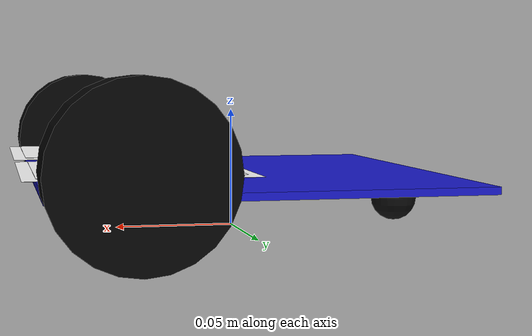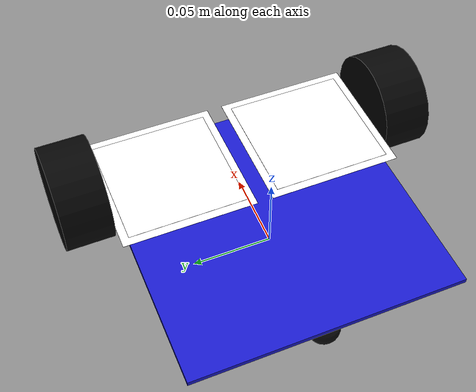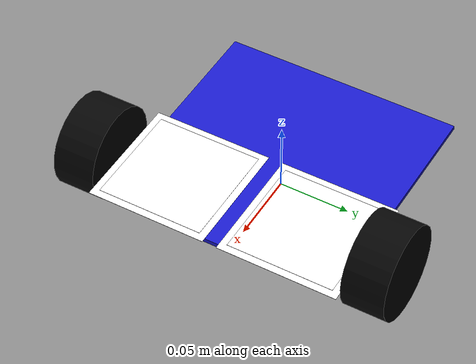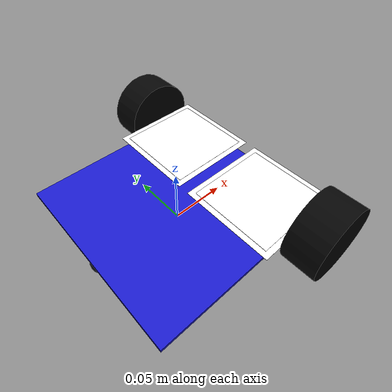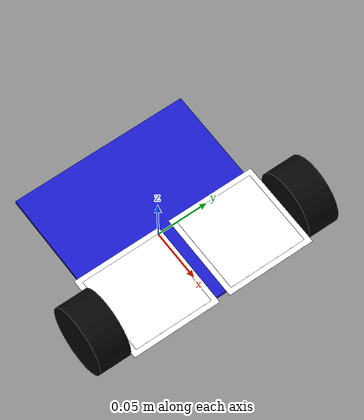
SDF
<?xml version="1.0" ?>
<sdf version="1.9">
  <model name="lane_bot">
    <!-- 모델 자체에는 z offset을 주지 않음 -->
    <pose>0 0 0 0 0 0</pose>
    <static>false</static>

    <!-- Base body -->
    <link name="base_link">
      <!-- 차체 바닥이 지면에서 2 cm 위.
           차체 두께 0.003 m이므로 center z = 0.020 + 0.0015 = 0.0215 -->
      <pose>0 0 0.0215 0 0 0</pose>

      <inertial>
        <pose>0 0 -0.005 0 0 0</pose>
        <mass>1.0</mass>
        <inertia>
          <ixx>0.01</ixx>
          <iyy>0.01</iyy>
          <izz>0.02</izz>
          <ixy>0</ixy>
          <ixz>0</ixz>
          <iyz>0</iyz>
        </inertia>
      </inertial>

      <collision name="base_collision">
        <geometry>
          <box>
            <size>0.17 0.17 0.003</size>
          </box>
        </geometry>
      </collision>

      <visual name="base_visual">
        <geometry>
          <box>
            <size>0.17 0.17 0.003</size>
          </box>
        </geometry>
        <material>
          <ambient>0.1 0.1 0.8 1</ambient>
          <diffuse>0.1 0.1 0.8 1</diffuse>
        </material>
      </visual>

      <visual name="aruco_10_white_plate">
        <pose>0.050 0.0475 0.0075 0 0 0</pose>
        <geometry>
          <plane>
            <normal>0 0 1</normal>
            <size>0.085 0.085</size>
          </plane>
        </geometry>
        <material>
          <ambient>1 1 1 1</ambient>
          <diffuse>1 1 1 1</diffuse>
        </material>
      </visual>

      <!-- ArUco marker 10 -->
      <!-- marker center는 기존이 맞다고 했으므로 x=0.055 유지 -->
      <visual name="aruco_10_visual">
        <pose>0.050 0.0475 0.008 0 0 0</pose>
        <geometry>
          <plane>
            <normal>0 0 1</normal>
            <size>0.075 0.075</size>
          </plane>
        </geometry>
        <material>
          <ambient>1 1 1 1</ambient>
          <diffuse>1 1 1 1</diffuse>
          <pbr>
            <metal>
              <albedo_map>materials/textures/aruco_10.png</albedo_map>
            </metal>
          </pbr>
        </material>
      </visual>

      <visual name="aruco_15_white_plate">
        <pose>0.050 -0.0475 0.0075 0 0 0</pose>
        <geometry>
          <plane>
            <normal>0 0 1</normal>
            <size>0.085 0.085</size>
          </plane>
        </geometry>
        <material>
          <ambient>1 1 1 1</ambient>
          <diffuse>1 1 1 1</diffuse>
        </material>
      </visual>

      <!-- ArUco marker 15 -->
      <visual name="aruco_15_visual">
        <pose>0.050 -0.0475 0.008 0 0 0</pose>
        <geometry>
          <plane>
            <normal>0 0 1</normal>
            <size>0.075 0.075</size>
          </plane>
        </geometry>
        <material>
          <ambient>1 1 1 1</ambient>
          <diffuse>1 1 1 1</diffuse>
          <pbr>
            <metal>
              <albedo_map>materials/textures/aruco_15.png</albedo_map>
            </metal>
          </pbr>
        </material>
      </visual>
    </link>

    <!-- Left front wheel -->
    <!-- 바퀴 지름 6.5 cm → radius 0.0325 m.
         바퀴 축 x는 marker 중심선과 일치해야 하므로 x=0.055 -->
    <link name="left_wheel">
      <pose>0.055 0.105 0.0325 1.5708 0 0</pose>

      <inertial>
        <mass>0.1</mass>
        <inertia>
          <ixx>0.0001</ixx>
          <iyy>0.0001</iyy>
          <izz>0.0001</izz>
          <ixy>0</ixy>
          <ixz>0</ixz>
          <iyz>0</iyz>
        </inertia>
      </inertial>

      <collision name="left_wheel_collision">
        <geometry>
          <cylinder>
            <radius>0.0325</radius>
            <length>0.03</length>
          </cylinder>
        </geometry>
        <surface>
          <friction>
            <ode>
              <mu>1.2</mu>
              <mu2>1.2</mu2>
            </ode>
          </friction>
          <contact>
            <ode>
              <kp>100000</kp>
              <kd>10</kd>
              <max_vel>0.1</max_vel>
              <min_depth>0.001</min_depth>
            </ode>
          </contact>
        </surface>
      </collision>

      <visual name="left_wheel_visual">
        <geometry>
          <cylinder>
            <radius>0.0325</radius>
            <length>0.03</length>
          </cylinder>
        </geometry>
        <material>
          <ambient>0.02 0.02 0.02 1</ambient>
          <diffuse>0.02 0.02 0.02 1</diffuse>
        </material>
      </visual>
    </link>

    <!-- Right front wheel -->
    <link name="right_wheel">
      <pose>0.055 -0.105 0.0325 1.5708 0 0</pose>

      <inertial>
        <mass>0.1</mass>
        <inertia>
          <ixx>0.0001</ixx>
          <iyy>0.0001</iyy>
          <izz>0.0001</izz>
          <ixy>0</ixy>
          <ixz>0</ixz>
          <iyz>0</iyz>
        </inertia>
      </inertial>

      <collision name="right_wheel_collision">
        <geometry>
          <cylinder>
            <radius>0.0325</radius>
            <length>0.03</length>
          </cylinder>
        </geometry>
        <surface>
          <friction>
            <ode>
              <mu>1.2</mu>
              <mu2>1.2</mu2>
            </ode>
          </friction>
          <contact>
            <ode>
              <kp>100000</kp>
              <kd>10</kd>
              <max_vel>0.1</max_vel>
              <min_depth>0.001</min_depth>
            </ode>
          </contact>
        </surface>
      </collision>

      <visual name="right_wheel_visual">
        <geometry>
          <cylinder>
            <radius>0.0325</radius>
            <length>0.03</length>
          </cylinder>
        </geometry>
        <material>
          <ambient>0.02 0.02 0.02 1</ambient>
          <diffuse>0.02 0.02 0.02 1</diffuse>
        </material>
      </visual>
    </link>

    <!-- Rear ball caster -->
    <!-- 뒤쪽 볼. 차체 바닥 offset 2 cm 조건에 맞춰 radius=0.02, center z=0.02 -->
    <link name="caster">
      <pose>-0.075 0 0.010 0 0 0</pose>

      <inertial>
        <mass>0.01</mass>
        <inertia>
          <ixx>0.00002</ixx>
          <iyy>0.00002</iyy>
          <izz>0.00002</izz>
          <ixy>0</ixy>
          <ixz>0</ixz>
          <iyz>0</iyz>
        </inertia>
      </inertial>

      <collision name="caster_collision">
        <geometry>
          <sphere>
            <radius>0.01</radius>
          </sphere>
        </geometry>
        <surface>
          <friction>
            <ode>
              <mu>0.05</mu>
              <mu2>0.05</mu2>
            </ode>
          </friction>
          <contact>
            <ode>
              <kp>100000</kp>
              <kd>10</kd>
              <max_vel>0.1</max_vel>
              <min_depth>0.001</min_depth>
            </ode>
          </contact>
        </surface>
      </collision>

      <visual name="caster_visual">
        <geometry>
          <sphere>
            <radius>0.010</radius>
          </sphere>
        </geometry>
        <material>
          <ambient>0.05 0.05 0.05 1</ambient>
          <diffuse>0.05 0.05 0.05 1</diffuse>
        </material>
      </visual>
    </link>

    <!-- Joints -->
    <joint name="left_wheel_joint" type="revolute">
      <parent>base_link</parent>
      <child>left_wheel</child>
      <axis>
        <xyz>0 0 -1</xyz>
        <dynamics>
          <damping>0.05</damping>
          <friction>0.01</friction>
        </dynamics>
        <limit>
          <lower>-1e16</lower>
          <upper>1e16</upper>
        </limit>
      </axis>
    </joint>

    <joint name="right_wheel_joint" type="revolute">
      <parent>base_link</parent>
      <child>right_wheel</child>
      <axis>
        <xyz>0 0 -1</xyz>
        <dynamics>
          <damping>0.05</damping>
          <friction>0.01</friction>
        </dynamics>
        <limit>
          <lower>-1e16</lower>
          <upper>1e16</upper>
        </limit>
      </axis>
    </joint>

    <joint name="caster_joint" type="fixed">
      <parent>base_link</parent>
      <child>caster</child>
    </joint>

    <!-- Diff drive plugin -->
    <plugin
      filename="gz-sim-diff-drive-system"
      name="gz::sim::systems::DiffDrive">

      <left_joint>left_wheel_joint</left_joint>
      <right_joint>right_wheel_joint</right_joint>

      <wheel_separation>0.21</wheel_separation>
      <wheel_radius>0.0325</wheel_radius>

      <topic>/cmd_vel</topic>
      <odom_topic>/odom</odom_topic>

      <max_linear_acceleration>1.0</max_linear_acceleration>
      <min_linear_acceleration>-1.0</min_linear_acceleration>
      <max_angular_acceleration>2.0</max_angular_acceleration>
      <min_angular_acceleration>-2.0</min_angular_acceleration>
    </plugin>

  </model>
</sdf>
